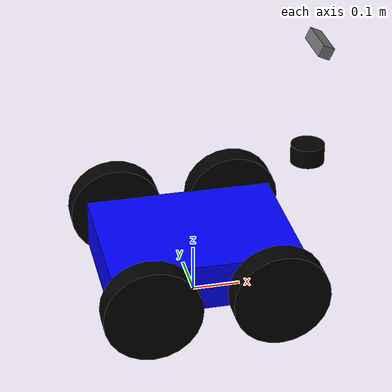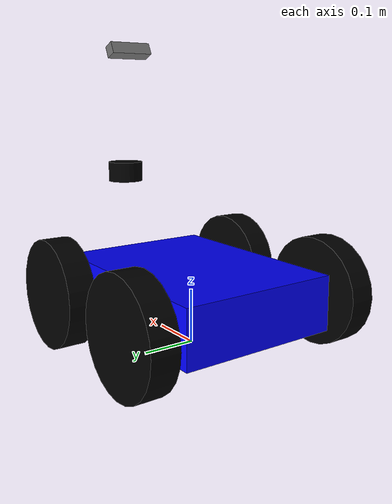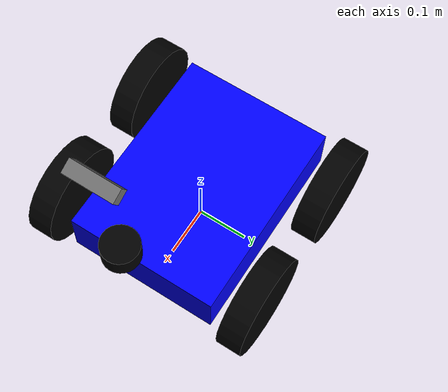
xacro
<?xml version="1.0"?>
<robot name="simple_car" xmlns:xacro="http://www.ros.org/wiki/xacro">

  <xacro:include filename="$(find vehicle_gazebo_sim)/urdf/realsense_d435i.urdf.xacro"/>

  <xacro:macro name="skid_wheel_contact" params="link_name">
    <gazebo reference="${link_name}">
      <mu1>1.0</mu1>
      <mu2>1.0</mu2>
      <fdir1>0 0 1</fdir1>
    </gazebo>
  </xacro:macro>
  <xacro:skid_wheel_contact link_name="right_back_wheel"/>
  <xacro:skid_wheel_contact link_name="left_back_wheel"/>
  <xacro:skid_wheel_contact link_name="right_top_wheel"/>
  <xacro:skid_wheel_contact link_name="left_top_wheel"/>

  <link name="base_footprint"/>

  <joint name="base_footprint_joint" type="fixed">
    <parent link="base_footprint"/>
    <child link="chassis"/>
    <origin xyz="0 0 0.1" rpy="0 0 0"/>
  </joint>

  <link name="chassis">
    <visual>
      <geometry><box size="0.4 0.3 0.1"/></geometry>
      <material name="blue"><color rgba="0.0 0.0 1.0 1.0"/></material>
    </visual>
    <collision>
      <geometry><box size="0.4 0.3 0.1"/></geometry>
    </collision>
    <inertial>
      <mass value="2.0"/>
      <inertia ixx="0.016" ixy="0.0" ixz="0.0" iyy="0.028" iyz="0.0" izz="0.041"/>
    </inertial>
  </link>

  <gazebo reference="chassis">
    <material>Gazebo/Blue</material>
  </gazebo>

  <link name="right_back_wheel">
    <visual>
      <geometry><cylinder length="0.05" radius="0.1"/></geometry>
      <material name="black"><color rgba="0.0 0.0 0.0 1.0"/></material>
    </visual>
    <collision>
      <geometry><cylinder length="0.05" radius="0.1"/></geometry>
    </collision>
    <inertial>
      <mass value="0.5"/>
      <inertia ixx="0.002" ixy="0.0" ixz="0.0" iyy="0.002" iyz="0.0" izz="0.001"/>
    </inertial>
  </link>

  <gazebo reference="right_back_wheel">
    <material>Gazebo/Black</material>
  </gazebo>

  <joint name="right_back_wheel_joint" type="continuous">
    <parent link="chassis"/>
    <child link="right_back_wheel"/>
    <origin xyz="-0.13 -0.205 0.0" rpy="-1.5708 0 0"/>
    <axis xyz="0 0 1"/>
  </joint>

  <link name="left_back_wheel">
    <visual>
      <geometry><cylinder length="0.05" radius="0.1"/></geometry>
      <material name="black"><color rgba="0.0 0.0 0.0 1.0"/></material>
    </visual>
    <collision>
      <geometry><cylinder length="0.05" radius="0.1"/></geometry>
    </collision>
    <inertial>
      <mass value="0.5"/>
      <inertia ixx="0.002" ixy="0.0" ixz="0.0" iyy="0.002" iyz="0.0" izz="0.001"/>
    </inertial>
  </link>

  <gazebo reference="left_back_wheel">
    <material>Gazebo/Black</material>
  </gazebo>

  <joint name="left_back_wheel_joint" type="continuous">
    <parent link="chassis"/>
    <child link="left_back_wheel"/>
    <origin xyz="-0.13 0.205 0.0" rpy="-1.5708 0 0"/>
    <axis xyz="0 0 1"/>
  </joint>

  <link name="right_top_wheel">
    <visual>
      <geometry><cylinder length="0.05" radius="0.1"/></geometry>
      <material name="black"><color rgba="0.0 0.0 0.0 1.0"/></material>
    </visual>
    <collision>
      <geometry><cylinder length="0.05" radius="0.1"/></geometry>
    </collision>
    <inertial>
      <mass value="0.5"/>
      <inertia ixx="0.002" ixy="0.0" ixz="0.0" iyy="0.002" iyz="0.0" izz="0.001"/>
    </inertial>
  </link>

  <gazebo reference="right_top_wheel">
    <material>Gazebo/Black</material>
  </gazebo>

  <joint name="right_top_wheel_joint" type="continuous">
    <parent link="chassis"/>
    <child link="right_top_wheel"/>
    <origin xyz="0.13 -0.205 0.0" rpy="-1.5708 0 0"/>
    <axis xyz="0 0 1"/>
  </joint>

  <link name="left_top_wheel">
    <visual>
      <geometry><cylinder length="0.05" radius="0.1"/></geometry>
      <material name="black"><color rgba="0.0 0.0 0.0 1.0"/></material>
    </visual>
    <collision>
      <geometry><cylinder length="0.05" radius="0.1"/></geometry>
    </collision>
    <inertial>
      <mass value="0.5"/>
      <inertia ixx="0.002" ixy="0.0" ixz="0.0" iyy="0.002" iyz="0.0" izz="0.001"/>
    </inertial>
  </link>

  <gazebo reference="left_top_wheel">
    <material>Gazebo/Black</material>
  </gazebo>

  <joint name="left_top_wheel_joint" type="continuous">
    <parent link="chassis"/>
    <child link="left_top_wheel"/>
    <origin xyz="0.13 0.205 0.0" rpy="-1.5708 0 0"/>
    <axis xyz="0 0 1"/>
  </joint>

  <!-- Gazebo 控制插件 -->
  <gazebo>
    <plugin name="gazebo_ros_skid_steer_drive" filename="libgazebo_ros_diff_drive.so">
      <ros>
        <namespace>/</namespace>
        <remapping>cmd_vel:=cmd_vel</remapping>
        <remapping>odom:=odom</remapping>
      </ros>

      <num_wheel_pairs>2</num_wheel_pairs>

      <left_joint>left_top_wheel_joint</left_joint>
      <right_joint>right_top_wheel_joint</right_joint>

      <left_joint>left_back_wheel_joint</left_joint>
      <right_joint>right_back_wheel_joint</right_joint>

      <!-- Physical track is 0.41 m.  Four-wheel skid steering needs a larger
           calibrated effective track to compensate tyre scrub. -->
      <wheel_separation>0.45</wheel_separation>
      <wheel_separation>0.45</wheel_separation>
      <wheel_diameter>0.20</wheel_diameter>
      <wheel_diameter>0.20</wheel_diameter>
      <max_wheel_torque>20</max_wheel_torque>
      <max_wheel_acceleration>1.0</max_wheel_acceleration>

      <publish_odom>true</publish_odom>
      <publish_odom_tf>false</publish_odom_tf>
      <publish_wheel_tf>false</publish_wheel_tf>

      <odometry_frame>odom</odometry_frame>
      <robot_base_frame>base_footprint</robot_base_frame>
    </plugin>

    <plugin name="gazebo_ros_wheel_slip" filename="libgazebo_ros_wheel_slip.so">
      <wheel link_name="right_back_wheel">
        <slip_compliance_lateral>0.10</slip_compliance_lateral>
        <slip_compliance_longitudinal>0.0</slip_compliance_longitudinal>
        <wheel_normal_force>10.5</wheel_normal_force>
      </wheel>
      <wheel link_name="left_back_wheel">
        <slip_compliance_lateral>0.10</slip_compliance_lateral>
        <slip_compliance_longitudinal>0.0</slip_compliance_longitudinal>
        <wheel_normal_force>10.5</wheel_normal_force>
      </wheel>
      <wheel link_name="right_top_wheel">
        <slip_compliance_lateral>0.10</slip_compliance_lateral>
        <slip_compliance_longitudinal>0.0</slip_compliance_longitudinal>
        <wheel_normal_force>10.5</wheel_normal_force>
      </wheel>
      <wheel link_name="left_top_wheel">
        <slip_compliance_lateral>0.10</slip_compliance_lateral>
        <slip_compliance_longitudinal>0.0</slip_compliance_longitudinal>
        <wheel_normal_force>10.5</wheel_normal_force>
      </wheel>
    </plugin>
  </gazebo>

<!-- Mid-360 雷达传感器 -->
  <link name="livox_frame">

    <!-- 外观设置 -->
    <visual>
      <geometry><cylinder length="0.04" radius="0.035"/></geometry>
      <material name="black"><color rgba="0.0 0.0 0.0 1.0"/></material>
    </visual>

    <!-- 碰撞设置 -->
    <collision>
      <origin xyz="0 0 0" rpy="0 0 0"/>
      <geometry>
        <cylinder length="0.04" radius="0.035"/>
      </geometry>
    </collision>

    <!-- 惯性设置 -->
    <inertial>
      <mass value="0.2"/>   <!-- 质量 -->
      <inertia ixx="0.0001" ixy="0.0" ixz="0.0" iyy="0.0001" iyz="0.0" izz="0.0001"/>
    </inertial>
  </link>

  <!-- 链接 -->
  <joint name="livox_joint" type="fixed">
    <parent link="chassis"/>
    <child link="livox_frame"/>
    <!-- Navigation extrinsic: base_footprint -> lidar = (0.24, 0, 0.30).
         chassis is already 0.10 m above base_footprint. -->
    <origin xyz="0.24 0 0.20" rpy="0 0 0"/>
  </joint>

  <!-- Mid-360 重复性扫描：射线方向按 ros2_livox_simulation 的
       mid360.csv 时序逐帧推进，而不是规则的二维栅格。 -->
  <gazebo reference="livox_frame">
    <sensor type="ray" name="livox_frame">
      <pose>0 0 0 0 0 0</pose>
      <always_on>true</always_on>
      <visualize>false</visualize>
      <update_rate>10</update_rate>

      <plugin name="livox_mid360_plugin" filename="libros2_livox.so">
        <ray>
          <scan>
            <horizontal>
              <samples>100</samples>
              <resolution>1</resolution>
              <min_angle>0</min_angle>
              <max_angle>6.2831852</max_angle>
            </horizontal>
            <vertical>
              <samples>360</samples>
              <resolution>1</resolution>
              <min_angle>-0.126012</min_angle>
              <max_angle>0.963247</max_angle>
            </vertical>
          </scan>
          <range>
            <min>0.1</min>
            <max>200.0</max>
            <resolution>0.002</resolution>
          </range>
          <noise>
            <type>gaussian</type>
            <mean>0.0</mean>
            <stddev>0.002</stddev>
          </noise>
        </ray>
        <samples>30000</samples>
        <!-- 1.5k ODE rays per scan keeps the 10 Hz schedule on desktop CPUs
             while uniformly preserving the Mid-360 scan sequence. -->
        <downsample>20</downsample>
        <!-- +X is the body-forward direction: publish azimuth -90..+90 deg. -->
        <front_half_only>true</front_half_only>
        <csv_file_name>$(find ros2_livox_simulation)/scan_mode/mid360.csv</csv_file_name>
        <topic>/livox/lidar</topic>
      </plugin>
    </sensor>

    <!-- imu 传感器 -->
    <sensor name="lidar_imu" type="imu">
      <always_on>true</always_on>
      <update_rate>200</update_rate> <visualize>false</visualize>

      <plugin name="lidar_imu_plugin" filename="libgazebo_ros_imu_sensor.so">
        <ros>
          <namespace>/</namespace>
          <remapping>~/out:=/livox/imu</remapping> </ros>
        <frame_name>livox_frame</frame_name>
        <initial_orientation_as_reference>false</initial_orientation_as_reference>
      </plugin>

      <imu>
        <angular_velocity>
          <x><noise type="gaussian"><mean>0.0</mean><stddev>2e-4</stddev></noise></x>
          <y><noise type="gaussian"><mean>0.0</mean><stddev>2e-4</stddev></noise></y>
          <z><noise type="gaussian"><mean>0.0</mean><stddev>2e-4</stddev></noise></z>
        </angular_velocity>
        <linear_acceleration>
          <x><noise type="gaussian"><mean>0.0</mean><stddev>1.7e-2</stddev></noise></x>
          <y><noise type="gaussian"><mean>0.0</mean><stddev>1.7e-2</stddev></noise></y>
          <z><noise type="gaussian"><mean>0.0</mean><stddev>1.7e-2</stddev></noise></z>
        </linear_acceleration>
      </imu>

    </sensor>
  </gazebo>

  <!-- D435i optical center: 0.55 m above base_footprint, pitched down 25 deg. -->
  <xacro:realsense_d435i parent="chassis">
    <origin xyz="0.25 0 0.45" rpy="0 0.436332313 0"/>
  </xacro:realsense_d435i>

</robot>

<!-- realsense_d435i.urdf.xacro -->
<robot xmlns:xacro="http://www.ros.org/wiki/xacro">

  <xacro:macro name="realsense_d435i" params="parent *origin">
    <xacro:property name="rs_pi" value="3.141592653589793"/>
    <xacro:property name="optical_rpy" value="${-rs_pi/2} 0 ${-rs_pi/2}"/>

    <link name="camera_link">
      <visual>
        <origin xyz="0 -0.0175 0" rpy="0 0 0"/>
        <geometry><box size="0.02505 0.090 0.025"/></geometry>
        <material name="realsense_aluminum"><color rgba="0.45 0.45 0.45 1"/></material>
      </visual>
      <collision>
        <origin xyz="0 -0.0175 0" rpy="0 0 0"/>
        <geometry><box size="0.02505 0.090 0.025"/></geometry>
      </collision>
      <inertial>
        <mass value="0.072"/>
        <inertia ixx="0.000050" ixy="0" ixz="0"
                 iyy="0.000008" iyz="0" izz="0.000050"/>
      </inertial>
    </link>

    <joint name="camera_joint" type="fixed">
      <parent link="${parent}"/>
      <child link="camera_link"/>
      <xacro:insert_block name="origin"/>
    </joint>

    <link name="camera_depth_frame"/>
    <joint name="camera_depth_joint" type="fixed">
      <parent link="camera_link"/>
      <child link="camera_depth_frame"/>
      <origin xyz="0 0 0" rpy="0 0 0"/>
    </joint>
    <link name="camera_depth_optical_frame"/>
    <joint name="camera_depth_optical_joint" type="fixed">
      <parent link="camera_depth_frame"/>
      <child link="camera_depth_optical_frame"/>
      <origin xyz="0 0 0" rpy="${optical_rpy}"/>
    </joint>

    <link name="camera_color_frame"/>
    <joint name="camera_color_joint" type="fixed">
      <parent link="camera_depth_frame"/>
      <child link="camera_color_frame"/>
      <origin xyz="0 0.015 0" rpy="0 0 0"/>
    </joint>
    <link name="camera_color_optical_frame"/>
    <joint name="camera_color_optical_joint" type="fixed">
      <parent link="camera_color_frame"/>
      <child link="camera_color_optical_frame"/>
      <origin xyz="0 0 0" rpy="${optical_rpy}"/>
    </joint>

    <link name="camera_left_ir_frame"/>
    <joint name="camera_left_ir_joint" type="fixed">
      <parent link="camera_depth_frame"/>
      <child link="camera_left_ir_frame"/>
      <origin xyz="0 0 0" rpy="0 0 0"/>
    </joint>
    <link name="camera_left_ir_optical_frame"/>
    <joint name="camera_left_ir_optical_joint" type="fixed">
      <parent link="camera_left_ir_frame"/>
      <child link="camera_left_ir_optical_frame"/>
      <origin xyz="0 0 0" rpy="${optical_rpy}"/>
    </joint>

    <link name="camera_right_ir_frame"/>
    <joint name="camera_right_ir_joint" type="fixed">
      <parent link="camera_depth_frame"/>
      <child link="camera_right_ir_frame"/>
      <origin xyz="0 -0.050 0" rpy="0 0 0"/>
    </joint>
    <link name="camera_right_ir_optical_frame"/>
    <joint name="camera_right_ir_optical_joint" type="fixed">
      <parent link="camera_right_ir_frame"/>
      <child link="camera_right_ir_optical_frame"/>
      <origin xyz="0 0 0" rpy="${optical_rpy}"/>
    </joint>

    <link name="camera_imu_frame"/>
    <joint name="camera_imu_joint" type="fixed">
      <parent link="camera_link"/>
      <child link="camera_imu_frame"/>
      <origin xyz="0 -0.0175 0" rpy="0 0 0"/>
    </joint>
    <link name="camera_imu_optical_frame"/>
    <joint name="camera_imu_optical_joint" type="fixed">
      <parent link="camera_imu_frame"/>
      <child link="camera_imu_optical_frame"/>
      <origin xyz="0 0 0" rpy="${optical_rpy}"/>
    </joint>

    <gazebo reference="camera_link">
      <material>Gazebo/Grey</material>

      <sensor name="cameracolor" type="camera">
        <pose>0 0.015 0 0 0 0</pose>
        <always_on>true</always_on>
        <update_rate>30</update_rate>
        <visualize>false</visualize>
        <camera name="camera">
          <horizontal_fov>1.2112585</horizontal_fov>
          <image><width>1280</width><height>720</height><format>RGB_INT8</format></image>
          <clip><near>0.1</near><far>10.0</far></clip>
          <noise><type>gaussian</type><mean>0.0</mean><stddev>0.007</stddev></noise>
        </camera>
      </sensor>

      <sensor name="cameraired1" type="camera">
        <always_on>true</always_on>
        <update_rate>30</update_rate>
        <visualize>false</visualize>
        <camera name="camera">
          <horizontal_fov>1.4870202</horizontal_fov>
          <image><width>424</width><height>240</height><format>L_INT8</format></image>
          <clip><near>0.1</near><far>10.0</far></clip>
          <noise><type>gaussian</type><mean>0.0</mean><stddev>0.05</stddev></noise>
        </camera>
      </sensor>

      <sensor name="cameraired2" type="camera">
        <pose>0 -0.050 0 0 0 0</pose>
        <always_on>true</always_on>
        <update_rate>30</update_rate>
        <visualize>false</visualize>
        <camera name="camera">
          <horizontal_fov>1.4870202</horizontal_fov>
          <image><width>424</width><height>240</height><format>L_INT8</format></image>
          <clip><near>0.1</near><far>10.0</far></clip>
          <noise><type>gaussian</type><mean>0.0</mean><stddev>0.05</stddev></noise>
        </camera>
      </sensor>

      <sensor name="cameradepth" type="depth">
        <!-- Render depth from the color imager pose and intrinsics so that each
             depth pixel is registered directly to the color image. -->
        <pose>0 0.015 0 0 0 0</pose>
        <always_on>true</always_on>
        <update_rate>30</update_rate>
        <visualize>false</visualize>
        <camera name="camera">
          <horizontal_fov>1.2112585</horizontal_fov>
          <image><width>1280</width><height>720</height></image>
          <clip><near>0.1</near><far>10.0</far></clip>
          <noise><type>gaussian</type><mean>0.0</mean><stddev>0.002</stddev></noise>
        </camera>
      </sensor>
    </gazebo>

    <gazebo reference="camera_imu_optical_frame">
      <sensor name="camera_imu_sensor" type="imu">
        <always_on>true</always_on>
        <update_rate>200</update_rate>
        <visualize>false</visualize>
        <plugin name="camera_imu_plugin" filename="libgazebo_ros_imu_sensor.so">
          <ros>
            <namespace>/camera</namespace>
            <remapping>~/out:=imu</remapping>
          </ros>
          <frame_name>camera_imu_optical_frame</frame_name>
          <initial_orientation_as_reference>false</initial_orientation_as_reference>
        </plugin>
        <imu>
          <angular_velocity>
            <x><noise type="gaussian"><mean>0</mean><stddev>0.0002</stddev></noise></x>
            <y><noise type="gaussian"><mean>0</mean><stddev>0.0002</stddev></noise></y>
            <z><noise type="gaussian"><mean>0</mean><stddev>0.0002</stddev></noise></z>
          </angular_velocity>
          <linear_acceleration>
            <x><noise type="gaussian"><mean>0</mean><stddev>0.017</stddev></noise></x>
            <y><noise type="gaussian"><mean>0</mean><stddev>0.017</stddev></noise></y>
            <z><noise type="gaussian"><mean>0</mean><stddev>0.017</stddev></noise></z>
          </linear_acceleration>
        </imu>
      </sensor>
    </gazebo>

    <gazebo>
      <plugin name="camera" filename="librealsense_gazebo_plugin.so">
        <prefix>camera</prefix>
        <depthUpdateRate>30.0</depthUpdateRate>
        <colorUpdateRate>30.0</colorUpdateRate>
        <infraredUpdateRate>30.0</infraredUpdateRate>
        <depthTopicName>depth/image_raw</depthTopicName>
        <depthCameraInfoTopicName>depth/camera_info</depthCameraInfoTopicName>
        <colorTopicName>color/image_raw</colorTopicName>
        <colorCameraInfoTopicName>color/camera_info</colorCameraInfoTopicName>
        <infrared1TopicName>infra1/image_rect_raw</infrared1TopicName>
        <infrared1CameraInfoTopicName>infra1/camera_info</infrared1CameraInfoTopicName>
        <infrared2TopicName>infra2/image_rect_raw</infrared2TopicName>
        <infrared2CameraInfoTopicName>infra2/camera_info</infrared2CameraInfoTopicName>
        <colorOpticalframeName>camera_color_optical_frame</colorOpticalframeName>
        <depthOpticalframeName>camera_color_optical_frame</depthOpticalframeName>
        <infrared1OpticalframeName>camera_left_ir_optical_frame</infrared1OpticalframeName>
        <infrared2OpticalframeName>camera_right_ir_optical_frame</infrared2OpticalframeName>
        <rangeMinDepth>0.1</rangeMinDepth>
        <rangeMaxDepth>10.0</rangeMaxDepth>
        <pointCloud>true</pointCloud>
        <pointCloudTopicName>depth/color/points</pointCloudTopicName>
        <pointCloudCutoff>0.1</pointCloudCutoff>
        <pointCloudCutoffMax>10.0</pointCloudCutoffMax>
      </plugin>
    </gazebo>
  </xacro:macro>
</robot>
